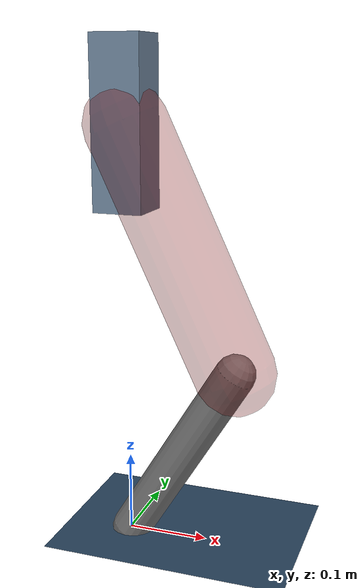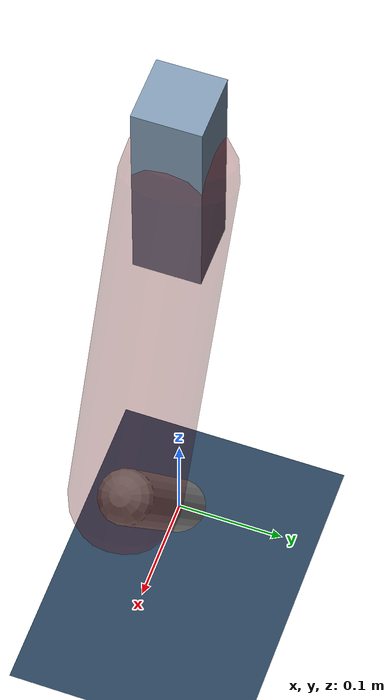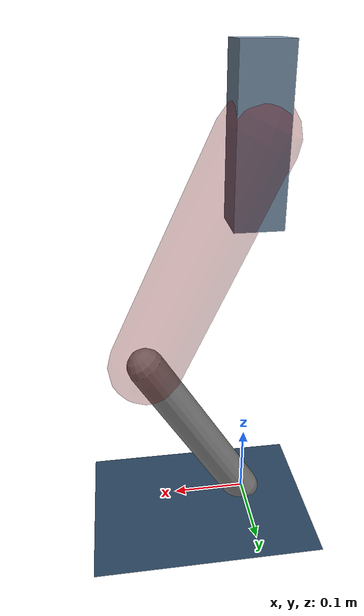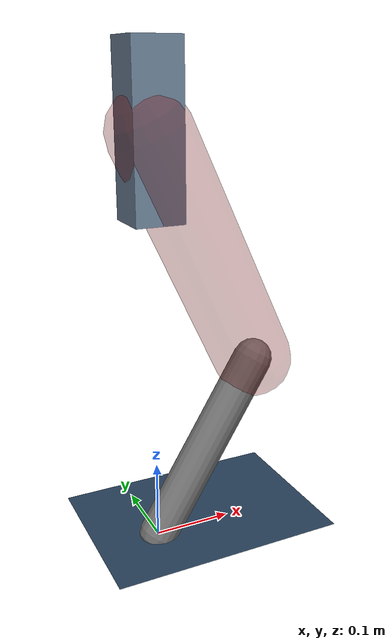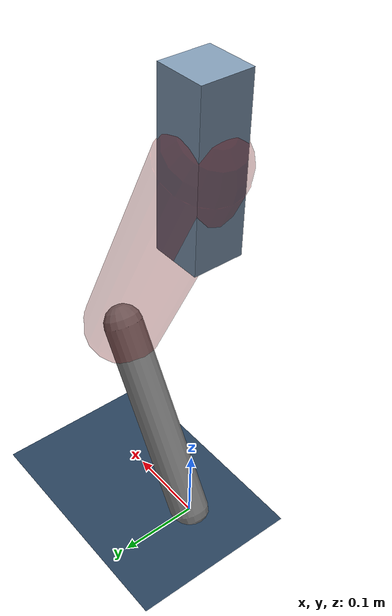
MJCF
<mujoco model="Hopper2D">
	<compiler inertiafromgeom="true" angle="radian" />
	<option timestep="0.001" integrator="implicit" cone="elliptic" solver="Newton" tolerance="1e-10" />

	<default>
		<geom contype="1" conaffinity="1" condim="3" friction="2 0.005 0.0001" solref="0.005 1" />
		<joint limited="true" damping="0.1" />
	</default>

	<asset>
		<texture name="skybox" type="skybox" builtin="gradient" rgb1=".4 .6 .8" rgb2="0 0 0" width="800" height="800" />
		<texture name="grid" type="2d" builtin="checker" rgb1=".1 .2 .3" rgb2=".2 .3 .4" width="300" height="300" mark="edge" markrgb=".2 .3 .4" />
		<material name="ground" texture="grid" texrepeat="1 1" texuniform="true" reflectance="0.1" />
		<material name="leg" rgba="0.5 0.6 0.7 1" />
	</asset>

	<worldbody>

		<geom name="floor" type="plane" size="5 5 0.25" material="ground" />

		<light directional="false" diffuse="0.8 0.8 0.8" specular="0.3 0.3 0.3" pos="0 0 2" dir="0 0 -1" />
		<light mode="targetbodycom" target="base" directional="false" diffuse="0.8 0.8 0.8" specular="0.3 0.3 0.3" pos="0 0 2" dir="0 0 -1" />

		<camera name="fixed" pos="0 -2 1" xyaxes="1 0 0 0 0 1" />
		<camera name="tracking" mode="trackcom" pos="0 -3 1" />

		<body name="root" pos="0 0 0.5132071350155258">
			<joint name="slide_x" type="slide" axis="1 0 0" range="-100 100" />
			<joint name="slide_z" type="slide" axis="0 0 1" range="0 10" />

			<body name="base" pos="0 0 0">
				<geom name="torso" type="box" size="0.03 0.03 0.1" mass="3.46" material="leg" />

				<body name="link1" pos="0 0 0" euler="0 1.129904445210895 0">
					<joint type="hinge" axis="0 -1 0" pos="0 0 0" name="hinge1" limited="true" range="-3.14 3.14" stiffness="0" damping="0.1" />
					<geom name="thigh" type="capsule" fromto="0 0 0 0.31929754378844427 0 0" size="0.05" rgba="0.5 0 0 0.3" mass="1.0413033682287995" />

					<body name="link2" pos="0.31929754378844427 0 0" euler="0 0.9865134558919102 0">
						<joint type="hinge" axis="0 -1 0" pos="0 0 0" name="hinge2" limited="true" range="-3.14 3.14" stiffness="0" damping="0.1" />
						<geom name="shank" type="capsule" fromto="0 0 0 0.26256700893953133 0 0" size="0.025" mass="0.45285360715162504" />

					</body>
				</body>
			</body>
		</body>
	</worldbody>

	<actuator>
		<motor name="torque1" joint="hinge1" ctrlrange="-124.00003660419542 124.00003660419542" ctrllimited="true" gear="1" />
		<motor name="torque2" joint="hinge2" ctrlrange="-189.42352703385777 189.42352703385777" ctrllimited="true" gear="1" />
	</actuator>
</mujoco>
